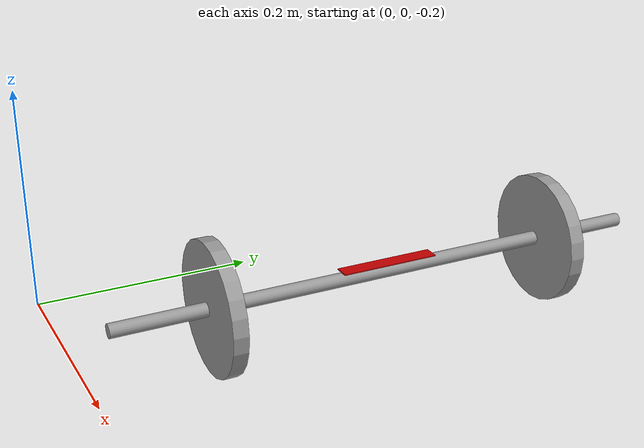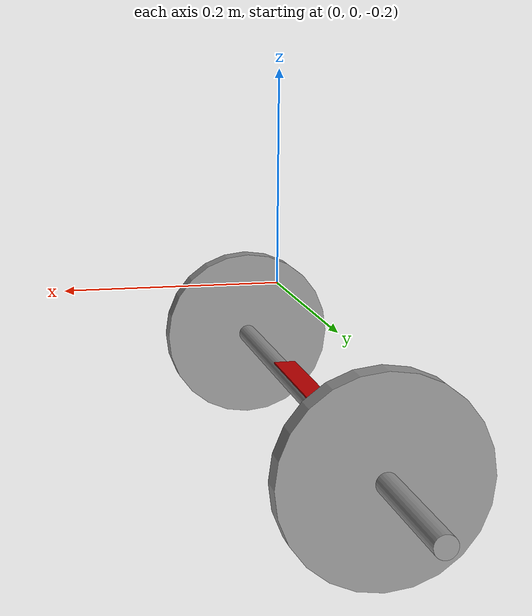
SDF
<?xml version='1.0'?>
<sdf version='1.6'>
  <model name='lift_13'>
    <link name='link_3'>
      <inertial>
        <mass>0.1</mass>
        <inertia>
          <ixx>0.0145833</ixx>
          <ixy>0</ixy>
          <ixz>0</ixz>
          <iyy>0.0145833</iyy>
          <iyz>0</iyz>
          <izz>0.0125</izz>
        </inertia>
        <pose frame=''>0 0 0 0 -0 0</pose>
      </inertial>
      <pose frame=''>0.062974 0.325589 -0.20889 1.5707 -0 0</pose>
      <gravity>1</gravity>
      <self_collide>0</self_collide>
      <kinematic>0</kinematic>
      <enable_wind>0</enable_wind>
      <visual name='visual'>
        <pose frame=''>0 0 0 0 -0 0</pose>
        <geometry>
          <cylinder>
            <radius>0.007</radius>
            <length>0.56</length>
          </cylinder>
        </geometry>
        <material>
          <lighting>1</lighting>
          <script>
            <uri>file://media/materials/scripts/gazebo.material</uri>
            <name>Gazebo/Grey</name>
          </script>
          <shader type='pixel'>
            <normal_map>__default__</normal_map>
          </shader>
          <ambient>0.3 0.3 0.3 1</ambient>
          <diffuse>0.7 0.7 0.7 1</diffuse>
          <specular>0.01 0.01 0.01 1</specular>
          <emissive>0 0 0 1</emissive>
        </material>
        <transparency>0</transparency>
        <cast_shadows>1</cast_shadows>
      </visual>
      <collision name='collision'>
        <laser_retro>0</laser_retro>
        <max_contacts>10</max_contacts>
        <pose frame=''>0 0 0 0 -0 0</pose>
        <geometry>
          <cylinder>
            <radius>0.007</radius>
            <length>0.56</length>
          </cylinder>
        </geometry>
        <surface>
          <friction>
            <ode>
              <mu>1</mu>
              <mu2>1</mu2>
              <fdir1>0 0 0</fdir1>
              <slip1>0</slip1>
              <slip2>0</slip2>
            </ode>
            <torsional>
              <coefficient>1</coefficient>
              <patch_radius>0</patch_radius>
              <surface_radius>0</surface_radius>
              <use_patch_radius>1</use_patch_radius>
              <ode>
                <slip>0</slip>
              </ode>
            </torsional>
          </friction>
          <bounce>
            <restitution_coefficient>0</restitution_coefficient>
            <threshold>1e+06</threshold>
          </bounce>
          <contact>
            <collide_without_contact>0</collide_without_contact>
            <collide_without_contact_bitmask>1</collide_without_contact_bitmask>
            <collide_bitmask>1</collide_bitmask>
            <ode>
              <soft_cfm>0</soft_cfm>
              <soft_erp>0.2</soft_erp>
              <kp>1e+13</kp>
              <kd>1</kd>
              <max_vel>0.01</max_vel>
              <min_depth>0</min_depth>
            </ode>
            <bullet>
              <split_impulse>1</split_impulse>
              <split_impulse_penetration_threshold>-0.01</split_impulse_penetration_threshold>
              <soft_cfm>0</soft_cfm>
              <soft_erp>0.2</soft_erp>
              <kp>1e+13</kp>
              <kd>1</kd>
            </bullet>
          </contact>
        </surface>
      </collision>
    </link>
    <link name='link_4'>
      <inertial>
        <mass>0.1</mass>
        <inertia>
          <ixx>0.0145833</ixx>
          <ixy>0</ixy>
          <ixz>0</ixz>
          <iyy>0.0145833</iyy>
          <iyz>0</iyz>
          <izz>0.0125</izz>
        </inertia>
        <pose frame=''>0 0 0 0 -0 0</pose>
      </inertial>
      <pose frame=''>0.062974 0.505589 -0.208908 1.5707 -0 0</pose>
      <gravity>1</gravity>
      <self_collide>0</self_collide>
      <kinematic>0</kinematic>
      <enable_wind>0</enable_wind>
      <visual name='visual'>
        <pose frame=''>0 0 0 0 -0 0</pose>
        <geometry>
          <cylinder>
            <radius>0.066</radius>
            <length>0.015</length>
          </cylinder>
        </geometry>
        <material>
          <lighting>1</lighting>
          <script>
            <uri>file://media/materials/scripts/gazebo.material</uri>
            <name>Gazebo/Grey</name>
          </script>
          <shader type='pixel'>
            <normal_map>__default__</normal_map>
          </shader>
          <ambient>0.3 0.3 0.3 1</ambient>
          <diffuse>0.7 0.7 0.7 1</diffuse>
          <specular>0.01 0.01 0.01 1</specular>
          <emissive>0 0 0 1</emissive>
        </material>
        <transparency>0</transparency>
        <cast_shadows>1</cast_shadows>
      </visual>
      <collision name='collision'>
        <laser_retro>0</laser_retro>
        <max_contacts>10</max_contacts>
        <pose frame=''>0 0 0 0 -0 0</pose>
        <geometry>
          <cylinder>
            <radius>0.066</radius>
            <length>0.015</length>
          </cylinder>
        </geometry>
        <surface>
          <friction>
            <ode>
              <mu>1</mu>
              <mu2>1</mu2>
              <fdir1>0 0 0</fdir1>
              <slip1>0</slip1>
              <slip2>0</slip2>
            </ode>
            <torsional>
              <coefficient>1</coefficient>
              <patch_radius>0</patch_radius>
              <surface_radius>0</surface_radius>
              <use_patch_radius>1</use_patch_radius>
              <ode>
                <slip>0</slip>
              </ode>
            </torsional>
          </friction>
          <bounce>
            <restitution_coefficient>0</restitution_coefficient>
            <threshold>1e+06</threshold>
          </bounce>
          <contact>
            <collide_without_contact>0</collide_without_contact>
            <collide_without_contact_bitmask>1</collide_without_contact_bitmask>
            <collide_bitmask>1</collide_bitmask>
            <ode>
              <soft_cfm>0</soft_cfm>
              <soft_erp>0.2</soft_erp>
              <kp>1e+13</kp>
              <kd>1</kd>
              <max_vel>0.01</max_vel>
              <min_depth>0</min_depth>
            </ode>
            <bullet>
              <split_impulse>1</split_impulse>
              <split_impulse_penetration_threshold>-0.01</split_impulse_penetration_threshold>
              <soft_cfm>0</soft_cfm>
              <soft_erp>0.2</soft_erp>
              <kp>1e+13</kp>
              <kd>1</kd>
            </bullet>
          </contact>
        </surface>
      </collision>
    </link>
    <link name='link_4_clone'>
      <inertial>
        <mass>0.1</mass>
        <inertia>
          <ixx>0.0145833</ixx>
          <ixy>0</ixy>
          <ixz>0</ixz>
          <iyy>0.0145833</iyy>
          <iyz>0</iyz>
          <izz>0.0125</izz>
        </inertia>
        <pose frame=''>0 0 0 0 -0 0</pose>
      </inertial>
      <pose frame=''>0.062974 0.145589 -0.208873 1.5707 -0 0</pose>
      <gravity>1</gravity>
      <self_collide>0</self_collide>
      <kinematic>0</kinematic>
      <enable_wind>0</enable_wind>
      <visual name='visual'>
        <pose frame=''>0 0 0 0 -0 0</pose>
        <geometry>
          <cylinder>
            <radius>0.066</radius>
            <length>0.015</length>
          </cylinder>
        </geometry>
        <material>
          <lighting>1</lighting>
          <script>
            <uri>file://media/materials/scripts/gazebo.material</uri>
            <name>Gazebo/Grey</name>
          </script>
          <shader type='pixel'>
            <normal_map>__default__</normal_map>
          </shader>
          <ambient>0.3 0.3 0.3 1</ambient>
          <diffuse>0.7 0.7 0.7 1</diffuse>
          <specular>0.01 0.01 0.01 1</specular>
          <emissive>0 0 0 1</emissive>
        </material>
        <transparency>0</transparency>
        <cast_shadows>1</cast_shadows>
      </visual>
      <collision name='collision'>
        <laser_retro>0</laser_retro>
        <max_contacts>10</max_contacts>
        <pose frame=''>0 0 0 0 -0 0</pose>
        <geometry>
          <cylinder>
            <radius>0.066</radius>
            <length>0.015</length>
          </cylinder>
        </geometry>
        <surface>
          <friction>
            <ode>
              <mu>1</mu>
              <mu2>1</mu2>
              <fdir1>0 0 0</fdir1>
              <slip1>0</slip1>
              <slip2>0</slip2>
            </ode>
            <torsional>
              <coefficient>1</coefficient>
              <patch_radius>0</patch_radius>
              <surface_radius>0</surface_radius>
              <use_patch_radius>1</use_patch_radius>
              <ode>
                <slip>0</slip>
              </ode>
            </torsional>
          </friction>
          <bounce>
            <restitution_coefficient>0</restitution_coefficient>
            <threshold>1e+06</threshold>
          </bounce>
          <contact>
            <collide_without_contact>0</collide_without_contact>
            <collide_without_contact_bitmask>1</collide_without_contact_bitmask>
            <collide_bitmask>1</collide_bitmask>
            <ode>
              <soft_cfm>0</soft_cfm>
              <soft_erp>0.2</soft_erp>
              <kp>1e+13</kp>
              <kd>1</kd>
              <max_vel>0.01</max_vel>
              <min_depth>0</min_depth>
            </ode>
            <bullet>
              <split_impulse>1</split_impulse>
              <split_impulse_penetration_threshold>-0.01</split_impulse_penetration_threshold>
              <soft_cfm>0</soft_cfm>
              <soft_erp>0.2</soft_erp>
              <kp>1e+13</kp>
              <kd>1</kd>
            </bullet>
          </contact>
        </surface>
      </collision>
    </link>
    <link name='link_6'>
      <inertial>
        <mass>1e-08</mass>
        <inertia>
          <ixx>0</ixx>
          <ixy>0</ixy>
          <ixz>0</ixz>
          <iyy>0</iyy>
          <iyz>0</iyz>
          <izz>0</izz>
        </inertia>
        <pose frame=''>0 0 0 0 -0 0</pose>
      </inertial>
      <pose frame=''>0.062974 0.32559 -0.20089 0 -0 0</pose>
      <gravity>1</gravity>
      <self_collide>0</self_collide>
      <kinematic>0</kinematic>
      <enable_wind>0</enable_wind>
      <visual name='visual'>
        <pose frame=''>0 0 0 0 -0 0</pose>
        <geometry>
          <box>
            <size>0.0158 0.1 0.001</size>
          </box>
        </geometry>
        <material>
          <lighting>1</lighting>
          <script>
            <uri>file://media/materials/scripts/gazebo.material</uri>
            <name>Gazebo/Grey</name>
          </script>
          <shader type='pixel'>
            <normal_map>__default__</normal_map>
          </shader>
          <ambient>0.8 0 0 1</ambient>
          <diffuse>0.8 0 0 1</diffuse>
          <specular>0.8 0 0 1</specular>
          <emissive>0 0 0 1</emissive>
        </material>
        <transparency>0</transparency>
        <cast_shadows>1</cast_shadows>
      </visual>
      <collision name='collision'>
        <laser_retro>0</laser_retro>
        <max_contacts>10</max_contacts>
        <pose frame=''>0 0 0 0 -0 0</pose>
        <geometry>
          <box>
            <size>0.0158 0.1 0.001</size>
          </box>
        </geometry>
        <surface>
          <friction>
            <ode>
              <mu>1</mu>
              <mu2>1</mu2>
              <fdir1>0 0 0</fdir1>
              <slip1>0</slip1>
              <slip2>0</slip2>
            </ode>
            <torsional>
              <coefficient>1</coefficient>
              <patch_radius>0</patch_radius>
              <surface_radius>0</surface_radius>
              <use_patch_radius>1</use_patch_radius>
              <ode>
                <slip>0</slip>
              </ode>
            </torsional>
          </friction>
          <bounce>
            <restitution_coefficient>0</restitution_coefficient>
            <threshold>1e+06</threshold>
          </bounce>
          <contact>
            <collide_without_contact>0</collide_without_contact>
            <collide_without_contact_bitmask>1</collide_without_contact_bitmask>
            <collide_bitmask>1</collide_bitmask>
            <ode>
              <soft_cfm>0</soft_cfm>
              <soft_erp>0.2</soft_erp>
              <kp>1e+13</kp>
              <kd>1</kd>
              <max_vel>0.01</max_vel>
              <min_depth>0</min_depth>
            </ode>
            <bullet>
              <split_impulse>1</split_impulse>
              <split_impulse_penetration_threshold>-0.01</split_impulse_penetration_threshold>
              <soft_cfm>0</soft_cfm>
              <soft_erp>0.2</soft_erp>
              <kp>1e+13</kp>
              <kd>1</kd>
            </bullet>
          </contact>
        </surface>
      </collision>
    </link>
    <joint name='link_3_JOINT_3' type='fixed'>
      <parent>link_3</parent>
      <child>link_6</child>
      <pose frame=''>0 0 0 0 -0 0</pose>
      <physics>
        <ode>
          <limit>
            <cfm>0</cfm>
            <erp>0.2</erp>
          </limit>
          <suspension>
            <cfm>0</cfm>
            <erp>0.2</erp>
          </suspension>
        </ode>
      </physics>
    </joint>
    <joint name='link_3_JOINT_4' type='fixed'>
      <parent>link_3</parent>
      <child>link_4_clone</child>
      <pose frame=''>0 0 0 0 -0 0</pose>
      <physics>
        <ode>
          <limit>
            <cfm>0</cfm>
            <erp>0.2</erp>
          </limit>
          <suspension>
            <cfm>0</cfm>
            <erp>0.2</erp>
          </suspension>
        </ode>
      </physics>
    </joint>
    <joint name='link_3_JOINT_5' type='fixed'>
      <parent>link_3</parent>
      <child>link_4</child>
      <pose frame=''>0 0 0 0 -0 0</pose>
      <physics>
        <ode>
          <limit>
            <cfm>0</cfm>
            <erp>0.2</erp>
          </limit>
          <suspension>
            <cfm>0</cfm>
            <erp>0.2</erp>
          </suspension>
        </ode>
      </physics>
    </joint>
    <static>0</static>
    <allow_auto_disable>1</allow_auto_disable>
    <plugin name='lift_13' filename='lift_13.so'/>
  </model>
</sdf>
